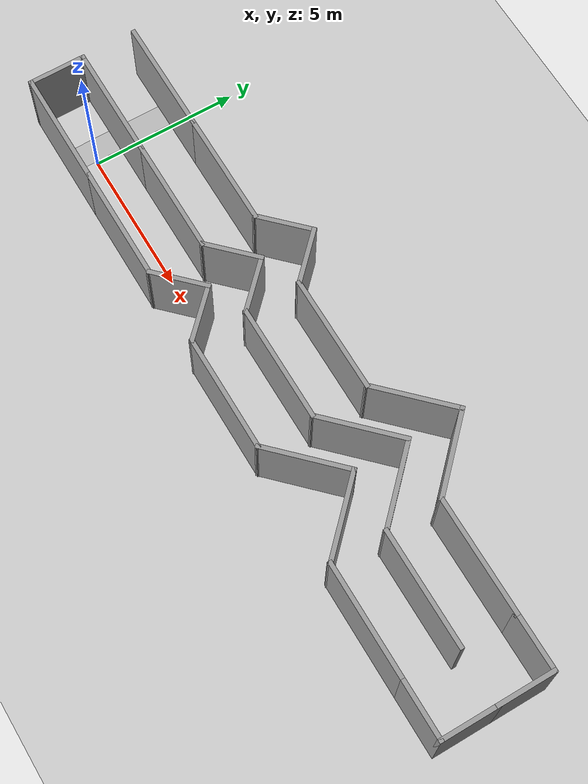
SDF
<sdf version="1.6">
 <world name="default">
  <light name="sun" type="directional">
   <pose>0 0 10 0 -0 0</pose>
   <diffuse>0.8 0.8 0.8 1</diffuse>
   <specular>0.1 0.1 0.1 1</specular>
   <attenuation>
    <range>1000</range>
    <constant>0.9</constant>
    <linear>0.01</linear>
    <quadratic>0.001</quadratic>
   </attenuation>
   <direction>-0.5 0.5 -1</direction>
  </light>
  <model name="ground_plane">
   <static>1</static>
   <link name="link">
    <collision name="collision">
     <geometry><plane><normal>0 0 1</normal><size>100 100</size></plane></geometry>
     <surface><friction><ode><mu>100</mu><mu2>50</mu2></ode></friction></surface>
    </collision>
    <visual name="visual">
     <cast_shadows>0</cast_shadows>
     <geometry><plane><normal>0 0 1</normal><size>100 100</size></plane></geometry>
     <material>
      <script><uri>file://media/materials/scripts/gazebo.material</uri><name>Gazebo/Grey</name></script>
     </material>
    </visual>
   </link>
  </model>
  <gravity>0 0 -9.8</gravity>
  <magnetic_field>6e-06 2.3e-05 -4.2e-05</magnetic_field>
  <atmosphere type="adiabatic"/>
  <physics name="default_physics" default="0" type="ode">
   <max_step_size>0.001</max_step_size>
   <real_time_factor>1</real_time_factor>
   <real_time_update_rate>1000</real_time_update_rate>
  </physics>
  <scene><ambient>0.4 0.4 0.4 1</ambient><background>0.7 0.7 0.7 1</background><shadows>1</shadows></scene>
  <spherical_coordinates>
   <surface_model>EARTH_WGS84</surface_model>
   <latitude_deg>0</latitude_deg>
   <longitude_deg>0</longitude_deg>
   <elevation>0</elevation>
   <heading_deg>0</heading_deg>
  </spherical_coordinates>
  <model name="smartcar_plane">
   <static>1</static>
   <link name="link">
    <collision name="collision">
     <geometry><box><size>0.8 3.9 0.001</size></box></geometry>
     <surface><friction><ode><mu>100</mu><mu2>50</mu2></ode></friction></surface>
    </collision>
    <visual name="visual">
     <geometry><box><size>0.8 3.9 0.001</size></box></geometry>
     <material>
      <script>
       <uri>model://smartcar_plane/materials/scripts</uri>
       <uri>model://smartcar_plane/materials/textures/</uri>
       <name>SmartcarPlane/Image</name>
      </script>
     </material>
    </visual>
   </link>
   <pose>-0.5 1 0 0 -0 0</pose>
  </model>
  <model name="bisai3">
   <pose>9.65345 1.98195 0 0 -0 0</pose>
   <link name="Wall_0">
    <collision name="Wall_0_Collision">
     <geometry><box><size>4 0.15 2.5</size></box></geometry>
     <pose>0 0 1.25 0 -0 0</pose>
    </collision>
    <visual name="Wall_0_Visual">
     <pose>0 0 1.25 0 -0 0</pose>
     <geometry><box><size>4 0.15 2.5</size></box></geometry>
     <material>
      <script><uri>file://media/materials/scripts/gazebo.material</uri><name>Gazebo/Grey</name></script>
      <ambient>1 1 1 1</ambient>
     </material>
     <meta><layer>0</layer></meta>
    </visual>
    <pose>-10.0234 -2.85763 0 0 -0 0</pose>
   </link>
   <link name="Wall_1">
    <collision name="Wall_1_Collision">
     <geometry><box><size>4 0.15 2.5</size></box></geometry>
     <pose>0 0 1.25 0 -0 0</pose>
    </collision>
    <visual name="Wall_1_Visual">
     <pose>0 0 1.25 0 -0 0</pose>
     <geometry><box><size>4 0.15 2.5</size></box></geometry>
     <material>
      <script><uri>file://media/materials/scripts/gazebo.material</uri><name>Gazebo/Grey</name></script>
      <ambient>1 1 1 1</ambient>
     </material>
     <meta><layer>0</layer></meta>
    </visual>
    <pose>-6.1734 -2.85763 0 0 -0 0</pose>
   </link>
   <link name="Wall_10">
    <collision name="Wall_10_Collision">
     <geometry><box><size>2 0.15 2.5</size></box></geometry>
     <pose>0 0 1.25 0 -0 0</pose>
    </collision>
    <visual name="Wall_10_Visual">
     <pose>0 0 1.25 0 -0 0</pose>
     <geometry><box><size>2 0.15 2.5</size></box></geometry>
     <material>
      <script><uri>file://media/materials/scripts/gazebo.material</uri><name>Gazebo/Grey</name></script>
      <ambient>1 1 1 1</ambient>
     </material>
     <meta><layer>0</layer></meta>
    </visual>
    <pose>11.9484 -1.93263 0 0 -0 1.5708</pose>
   </link>
   <link name="Wall_12">
    <collision name="Wall_12_Collision">
     <geometry><box><size>4 0.15 2.5</size></box></geometry>
     <pose>0 0 1.25 0 -0 0</pose>
    </collision>
    <visual name="Wall_12_Visual">
     <pose>0 0 1.25 0 -0 0</pose>
     <geometry><box><size>4 0.15 2.5</size></box></geometry>
     <material>
      <script><uri>file://media/materials/scripts/gazebo.material</uri><name>Gazebo/Grey</name></script>
      <ambient>1 1 1 1</ambient>
     </material>
     <meta><layer>0</layer></meta>
    </visual>
    <pose>8.1734 -1.00763 0 0 -0 3.14159</pose>
   </link>
   <link name="Wall_13">
    <collision name="Wall_13_Collision">
     <geometry><box><size>3 0.15 2.5</size></box></geometry>
     <pose>0 0 1.25 0 -0 0</pose>
    </collision>
    <visual name="Wall_13_Visual">
     <pose>0 0 1.25 0 -0 0</pose>
     <geometry><box><size>3 0.15 2.5</size></box></geometry>
     <material>
      <script><uri>file://media/materials/scripts/gazebo.material</uri><name>Gazebo/Grey</name></script>
      <ambient>1 1 1 1</ambient>
     </material>
     <meta><layer>0</layer></meta>
    </visual>
    <pose>5.24077 0 0 0 -0 2.35619</pose>
   </link>
   <link name="Wall_14">
    <collision name="Wall_14_Collision">
     <geometry><box><size>3 0.15 2.5</size></box></geometry>
     <pose>0 0 1.25 0 -0 0</pose>
    </collision>
    <visual name="Wall_14_Visual">
     <pose>0 0 1.25 0 -0 0</pose>
     <geometry><box><size>3 0.15 2.5</size></box></geometry>
     <material>
      <script><uri>file://media/materials/scripts/gazebo.material</uri><name>Gazebo/Grey</name></script>
      <ambient>1 1 1 1</ambient>
     </material>
     <meta><layer>0</layer></meta>
    </visual>
    <pose>3.22552 0 0 0 0 -2.35619</pose>
   </link>
   <link name="Wall_15">
    <collision name="Wall_15_Collision">
     <geometry><box><size>4 0.15 2.5</size></box></geometry>
     <pose>0 0 1.25 0 -0 0</pose>
    </collision>
    <visual name="Wall_15_Visual">
     <pose>0 0 1.25 0 -0 0</pose>
     <geometry><box><size>4 0.15 2.5</size></box></geometry>
     <material>
      <script><uri>file://media/materials/scripts/gazebo.material</uri><name>Gazebo/Grey</name></script>
      <ambient>1 1 1 1</ambient>
     </material>
     <meta><layer>0</layer></meta>
    </visual>
    <pose>0.292893 -1.00763 0 0 -0 3.14159</pose>
   </link>
   <link name="Wall_16">
    <collision name="Wall_16_Collision">
     <geometry><box><size>2 0.15 2.5</size></box></geometry>
     <pose>0 0 1.25 0 -0 0</pose>
    </collision>
    <visual name="Wall_16_Visual">
     <pose>0 0 1.25 0 -0 0</pose>
     <geometry><box><size>2 0.15 2.5</size></box></geometry>
     <material>
      <script><uri>file://media/materials/scripts/gazebo.material</uri><name>Gazebo/Grey</name></script>
      <ambient>1 1 1 1</ambient>
     </material>
     <meta><layer>0</layer></meta>
    </visual>
    <pose>-2.28618 -0.353553 0 0 -0 2.35619</pose>
   </link>
   <link name="Wall_17">
    <collision name="Wall_17_Collision">
     <geometry><box><size>2 0.15 2.5</size></box></geometry>
     <pose>0 0 1.25 0 -0 0</pose>
    </collision>
    <visual name="Wall_17_Visual">
     <pose>0 0 1.25 0 -0 0</pose>
     <geometry><box><size>2 0.15 2.5</size></box></geometry>
     <material>
      <script><uri>file://media/materials/scripts/gazebo.material</uri><name>Gazebo/Grey</name></script>
      <ambient>1 1 1 1</ambient>
     </material>
     <meta><layer>0</layer></meta>
    </visual>
    <pose>-3.59433 -0.353553 0 0 0 -2.35619</pose>
   </link>
   <link name="Wall_18">
    <collision name="Wall_18_Collision">
     <geometry><box><size>4 0.15 2.5</size></box></geometry>
     <pose>0 0 1.25 0 -0 0</pose>
    </collision>
    <visual name="Wall_18_Visual">
     <pose>0 0 1.25 0 -0 0</pose>
     <geometry><box><size>4 0.15 2.5</size></box></geometry>
     <material>
      <script><uri>file://media/materials/scripts/gazebo.material</uri><name>Gazebo/Grey</name></script>
      <ambient>1 1 1 1</ambient>
     </material>
     <meta><layer>0</layer></meta>
    </visual>
    <pose>-6.1734 -1.00763 0 0 -0 3.14159</pose>
   </link>
   <link name="Wall_2">
    <collision name="Wall_2_Collision">
     <geometry><box><size>2 0.15 2.5</size></box></geometry>
     <pose>0 0 1.25 0 -0 0</pose>
    </collision>
    <visual name="Wall_2_Visual">
     <pose>0 0 1.25 0 -0 0</pose>
     <geometry><box><size>2 0.15 2.5</size></box></geometry>
     <material>
      <script><uri>file://media/materials/scripts/gazebo.material</uri><name>Gazebo/Grey</name></script>
      <ambient>1 1 1 1</ambient>
     </material>
     <meta><layer>0</layer></meta>
    </visual>
    <pose>-3.59433 -2.20355 0 0 -0 0.785398</pose>
   </link>
   <link name="Wall_27">
    <collision name="Wall_27_Collision">
     <geometry><box><size>4 0.15 2.5</size></box></geometry>
     <pose>0 0 1.25 0 -0 0</pose>
    </collision>
    <visual name="Wall_27_Visual">
     <pose>0 0 1.25 0 -0 0</pose>
     <geometry><box><size>4 0.15 2.5</size></box></geometry>
     <material>
      <script><uri>file://media/materials/scripts/gazebo.material</uri><name>Gazebo/Grey</name></script>
      <ambient>1 1 1 1</ambient>
     </material>
     <meta><layer>0</layer></meta>
    </visual>
    <pose>-6.1734 0.842373 0 0 -0 0</pose>
   </link>
   <link name="Wall_28">
    <collision name="Wall_28_Collision">
     <geometry><box><size>2 0.15 2.5</size></box></geometry>
     <pose>0 0 1.25 0 -0 0</pose>
    </collision>
    <visual name="Wall_28_Visual">
     <pose>0 0 1.25 0 -0 0</pose>
     <geometry><box><size>2 0.15 2.5</size></box></geometry>
     <material>
      <script><uri>file://media/materials/scripts/gazebo.material</uri><name>Gazebo/Grey</name></script>
      <ambient>1 1 1 1</ambient>
     </material>
     <meta><layer>0</layer></meta>
    </visual>
    <pose>-3.59433 1.49645 0 0 -0 0.785398</pose>
   </link>
   <link name="Wall_29">
    <collision name="Wall_29_Collision">
     <geometry><box><size>2 0.15 2.5</size></box></geometry>
     <pose>0 0 1.25 0 -0 0</pose>
    </collision>
    <visual name="Wall_29_Visual">
     <pose>0 0 1.25 0 -0 0</pose>
     <geometry><box><size>2 0.15 2.5</size></box></geometry>
     <material>
      <script><uri>file://media/materials/scripts/gazebo.material</uri><name>Gazebo/Grey</name></script>
      <ambient>1 1 1 1</ambient>
     </material>
     <meta><layer>0</layer></meta>
    </visual>
    <pose>-2.28618 1.49645 0 0 0 -0.785398</pose>
   </link>
   <link name="Wall_3">
    <collision name="Wall_3_Collision">
     <geometry><box><size>2 0.15 2.5</size></box></geometry>
     <pose>0 0 1.25 0 -0 0</pose>
    </collision>
    <visual name="Wall_3_Visual">
     <pose>0 0 1.25 0 -0 0</pose>
     <geometry><box><size>2 0.15 2.5</size></box></geometry>
     <material>
      <script><uri>file://media/materials/scripts/gazebo.material</uri><name>Gazebo/Grey</name></script>
      <ambient>1 1 1 1</ambient>
     </material>
     <meta><layer>0</layer></meta>
    </visual>
    <pose>-2.28618 -2.20355 0 0 0 -0.785398</pose>
   </link>
   <link name="Wall_30">
    <collision name="Wall_30_Collision">
     <geometry><box><size>4 0.15 2.5</size></box></geometry>
     <pose>0 0 1.25 0 -0 0</pose>
    </collision>
    <visual name="Wall_30_Visual">
     <pose>0 0 1.25 0 -0 0</pose>
     <geometry><box><size>4 0.15 2.5</size></box></geometry>
     <material>
      <script><uri>file://media/materials/scripts/gazebo.material</uri><name>Gazebo/Grey</name></script>
      <ambient>1 1 1 1</ambient>
     </material>
     <meta><layer>0</layer></meta>
    </visual>
    <pose>0.292893 0.842373 0 0 -0 0</pose>
   </link>
   <link name="Wall_31">
    <collision name="Wall_31_Collision">
     <geometry><box><size>3 0.15 2.5</size></box></geometry>
     <pose>0 0 1.25 0 -0 0</pose>
    </collision>
    <visual name="Wall_31_Visual">
     <pose>0 0 1.25 0 -0 0</pose>
     <geometry><box><size>3 0.15 2.5</size></box></geometry>
     <material>
      <script><uri>file://media/materials/scripts/gazebo.material</uri><name>Gazebo/Grey</name></script>
      <ambient>1 1 1 1</ambient>
     </material>
     <meta><layer>0</layer></meta>
    </visual>
    <pose>3.22552 1.85 0 0 -0 0.785398</pose>
   </link>
   <link name="Wall_32">
    <collision name="Wall_32_Collision">
     <geometry><box><size>3 0.15 2.5</size></box></geometry>
     <pose>0 0 1.25 0 -0 0</pose>
    </collision>
    <visual name="Wall_32_Visual">
     <pose>0 0 1.25 0 -0 0</pose>
     <geometry><box><size>3 0.15 2.5</size></box></geometry>
     <material>
      <script><uri>file://media/materials/scripts/gazebo.material</uri><name>Gazebo/Grey</name></script>
      <ambient>1 1 1 1</ambient>
     </material>
     <meta><layer>0</layer></meta>
    </visual>
    <pose>5.24077 1.85 0 0 0 -0.785398</pose>
   </link>
   <link name="Wall_33">
    <collision name="Wall_33_Collision">
     <geometry><box><size>4 0.15 2.5</size></box></geometry>
     <pose>0 0 1.25 0 -0 0</pose>
    </collision>
    <visual name="Wall_33_Visual">
     <pose>0 0 1.25 0 -0 0</pose>
     <geometry><box><size>4 0.15 2.5</size></box></geometry>
     <material>
      <script><uri>file://media/materials/scripts/gazebo.material</uri><name>Gazebo/Grey</name></script>
      <ambient>1 1 1 1</ambient>
     </material>
     <meta><layer>0</layer></meta>
    </visual>
    <pose>8.1734 0.842373 0 0 -0 0</pose>
   </link>
   <link name="Wall_34">
    <collision name="Wall_34_Collision">
     <geometry><box><size>2 0.15 2.5</size></box></geometry>
     <pose>0 0 1.25 0 -0 0</pose>
    </collision>
    <visual name="Wall_34_Visual">
     <pose>0 0 1.25 0 -0 0</pose>
     <geometry><box><size>2 0.15 2.5</size></box></geometry>
     <material>
      <script><uri>file://media/materials/scripts/gazebo.material</uri><name>Gazebo/Grey</name></script>
      <ambient>1 1 1 1</ambient>
     </material>
     <meta><layer>0</layer></meta>
    </visual>
    <pose>11.0234 0.842373 0 0 -0 0</pose>
   </link>
   <link name="Wall_35">
    <collision name="Wall_35_Collision">
     <geometry><box><size>2 0.15 2.5</size></box></geometry>
     <pose>0 0 1.25 0 -0 0</pose>
    </collision>
    <visual name="Wall_35_Visual">
     <pose>0 0 1.25 0 -0 0</pose>
     <geometry><box><size>2 0.15 2.5</size></box></geometry>
     <material>
      <script><uri>file://media/materials/scripts/gazebo.material</uri><name>Gazebo/Grey</name></script>
      <ambient>1 1 1 1</ambient>
     </material>
     <meta><layer>0</layer></meta>
    </visual>
    <pose>11.9484 -0.082627 0 0 0 -1.5708</pose>
   </link>
   <link name="Wall_37">
    <collision name="Wall_37_Collision">
     <geometry><box><size>4 0.15 2.5</size></box></geometry>
     <pose>0 0 1.25 0 -0 0</pose>
    </collision>
    <visual name="Wall_37_Visual">
     <pose>0 0 1.25 0 -0 0</pose>
     <geometry><box><size>4 0.15 2.5</size></box></geometry>
     <material>
      <script><uri>file://media/materials/scripts/gazebo.material</uri><name>Gazebo/Grey</name></script>
      <ambient>1 1 1 1</ambient>
     </material>
     <meta><layer>0</layer></meta>
    </visual>
    <pose>-10.0234 -1.00763 0 0 -0 3.14159</pose>
   </link>
   <link name="Wall_38">
    <collision name="Wall_38_Collision">
     <geometry><box><size>2 0.15 2.5</size></box></geometry>
     <pose>0 0 1.25 0 -0 0</pose>
    </collision>
    <visual name="Wall_38_Visual">
     <pose>0 0 1.25 0 -0 0</pose>
     <geometry><box><size>2 0.15 2.5</size></box></geometry>
     <material>
      <script><uri>file://media/materials/scripts/gazebo.material</uri><name>Gazebo/Grey</name></script>
      <ambient>1 1 1 1</ambient>
     </material>
     <meta><layer>0</layer></meta>
    </visual>
    <pose>-11.9484 -1.93263 0 0 0 -1.5708</pose>
   </link>
   <link name="Wall_4">
    <collision name="Wall_4_Collision">
     <geometry><box><size>4 0.15 2.5</size></box></geometry>
     <pose>0 0 1.25 0 -0 0</pose>
    </collision>
    <visual name="Wall_4_Visual">
     <pose>0 0 1.25 0 -0 0</pose>
     <geometry><box><size>4 0.15 2.5</size></box></geometry>
     <material>
      <script><uri>file://media/materials/scripts/gazebo.material</uri><name>Gazebo/Grey</name></script>
      <ambient>1 1 1 1</ambient>
     </material>
     <meta><layer>0</layer></meta>
    </visual>
    <pose>0.292893 -2.85763 0 0 -0 0</pose>
   </link>
   <link name="Wall_40">
    <collision name="Wall_40_Collision">
     <geometry><box><size>4 0.15 2.5</size></box></geometry>
     <pose>0 0 1.25 0 -0 0</pose>
    </collision>
    <visual name="Wall_40_Visual">
     <pose>0 0 1.25 0 -0 0</pose>
     <geometry><box><size>4 0.15 2.5</size></box></geometry>
     <material>
      <script><uri>file://media/materials/scripts/gazebo.material</uri><name>Gazebo/Grey</name></script>
      <ambient>1 1 1 1</ambient>
     </material>
     <meta><layer>0</layer></meta>
    </visual>
    <pose>-10.0234 0.842373 0 0 -0 3.14159</pose>
   </link>
   <link name="Wall_6">
    <collision name="Wall_6_Collision">
     <geometry><box><size>3 0.15 2.5</size></box></geometry>
     <pose>0 0 1.25 0 -0 0</pose>
    </collision>
    <visual name="Wall_6_Visual">
     <pose>0 0 1.25 0 -0 0</pose>
     <geometry><box><size>3 0.15 2.5</size></box></geometry>
     <material>
      <script><uri>file://media/materials/scripts/gazebo.material</uri><name>Gazebo/Grey</name></script>
      <ambient>1 1 1 1</ambient>
     </material>
     <meta><layer>0</layer></meta>
    </visual>
    <pose>3.22552 -1.85 0 0 -0 0.785398</pose>
   </link>
   <link name="Wall_7">
    <collision name="Wall_7_Collision">
     <geometry><box><size>3 0.15 2.5</size></box></geometry>
     <pose>0 0 1.25 0 -0 0</pose>
    </collision>
    <visual name="Wall_7_Visual">
     <pose>0 0 1.25 0 -0 0</pose>
     <geometry><box><size>3 0.15 2.5</size></box></geometry>
     <material>
      <script><uri>file://media/materials/scripts/gazebo.material</uri><name>Gazebo/Grey</name></script>
      <ambient>1 1 1 1</ambient>
     </material>
     <meta><layer>0</layer></meta>
    </visual>
    <pose>5.24077 -1.85 0 0 0 -0.785398</pose>
   </link>
   <link name="Wall_8">
    <collision name="Wall_8_Collision">
     <geometry><box><size>4 0.15 2.5</size></box></geometry>
     <pose>0 0 1.25 0 -0 0</pose>
    </collision>
    <visual name="Wall_8_Visual">
     <pose>0 0 1.25 0 -0 0</pose>
     <geometry><box><size>4 0.15 2.5</size></box></geometry>
     <material>
      <script><uri>file://media/materials/scripts/gazebo.material</uri><name>Gazebo/Grey</name></script>
      <ambient>1 1 1 1</ambient>
     </material>
     <meta><layer>0</layer></meta>
    </visual>
    <pose>8.1734 -2.85763 0 0 -0 0</pose>
   </link>
   <link name="Wall_9">
    <collision name="Wall_9_Collision">
     <geometry><box><size>2 0.15 2.5</size></box></geometry>
     <pose>0 0 1.25 0 -0 0</pose>
    </collision>
    <visual name="Wall_9_Visual">
     <pose>0 0 1.25 0 -0 0</pose>
     <geometry><box><size>2 0.15 2.5</size></box></geometry>
     <material>
      <script><uri>file://media/materials/scripts/gazebo.material</uri><name>Gazebo/Grey</name></script>
      <ambient>1 1 1 1</ambient>
     </material>
     <meta><layer>0</layer></meta>
    </visual>
    <pose>11.0234 -2.85763 0 0 -0 0</pose>
   </link>
   <static>1</static>
  </model>
 </world>
</sdf>
